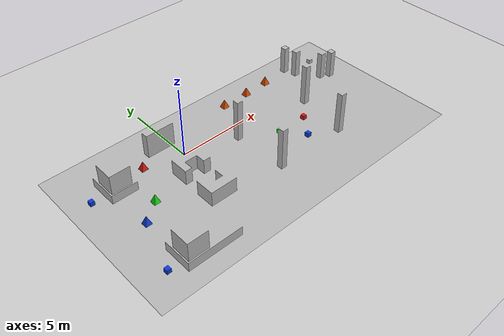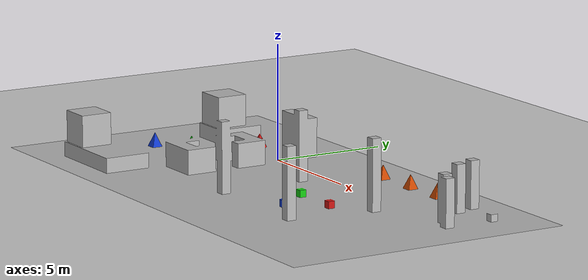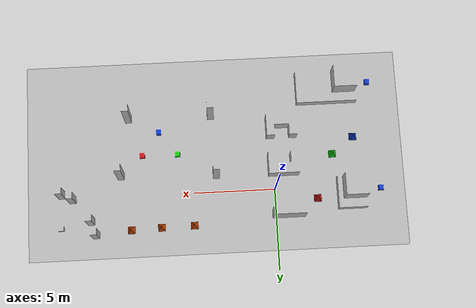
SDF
<?xml version="1.0"?>

<sdf version="1.6">
  <world name="husarion_world">
    <physics name="1ms" type="ignored">
      <max_step_size>0.001</max_step_size>
      <real_time_factor>1.0</real_time_factor>
    </physics>

    <light type="directional" name="sun">
      <cast_shadows>true</cast_shadows>
      <pose>0 0 10 0 0 0</pose>
      <diffuse>0.8 0.8 0.8 1</diffuse>
      <specular>0.2 0.2 0.2 1</specular>
      <attenuation>
        <range>1000</range>
        <constant>0.9</constant>
        <linear>0.01</linear>
        <quadratic>0.001</quadratic>
      </attenuation>
      <direction>-0.5 0.1 -0.9</direction>
    </light>

    <model name="ground_plane">
      <static>true</static>
      <link name="link">
        <collision name="collision">
          <geometry>
            <plane>
              <normal>0 0 1</normal>
              <size>100 100</size>
            </plane>
          </geometry>
        </collision>
        <visual name="visual">
          <geometry>
            <plane>
              <normal>0 0 1</normal>
              <size>100 100</size>
            </plane>
          </geometry>
          <material>
            <ambient>0.8 0.8 0.8 1</ambient>
            <diffuse>0.8 0.8 0.8 1</diffuse>
            <specular>0.8 0.8 0.8 1</specular>
          </material>
        </visual>
      </link>
    </model>

    <model name="husarion">
      <static>true</static>
      <link name="link">
        <pose>6.27668 -1.2161 0.0001 0 -0 0</pose>
        <visual name="visual">
          <geometry>
            <mesh>
              <uri>meshes/Italy.dae</uri>
            </mesh>
          </geometry>
        </visual>
        <collision name="visual">
          <geometry>
            <mesh>
              <uri>meshes/Italy.dae</uri>
            </mesh>
          </geometry>
        </collision>
      </link>
      <plugin filename="ignition-gazebo-imu-system" name="gz::sim::systems::Imu">
      </plugin>
      <plugin filename="ignition-gazebo-sensors-system" name="gz::sim::systems::Sensors">
      </plugin>
    </model>

    <spherical_coordinates>
      <surface_model>EARTH_WGS84</surface_model>
      <world_frame_orientation>ENU</world_frame_orientation>
      <latitude_deg>53.1978</latitude_deg>
      <longitude_deg>18.3732</longitude_deg>
      <elevation>0</elevation>
      <heading_deg>0</heading_deg>
    </spherical_coordinates>

  </world>
</sdf>
